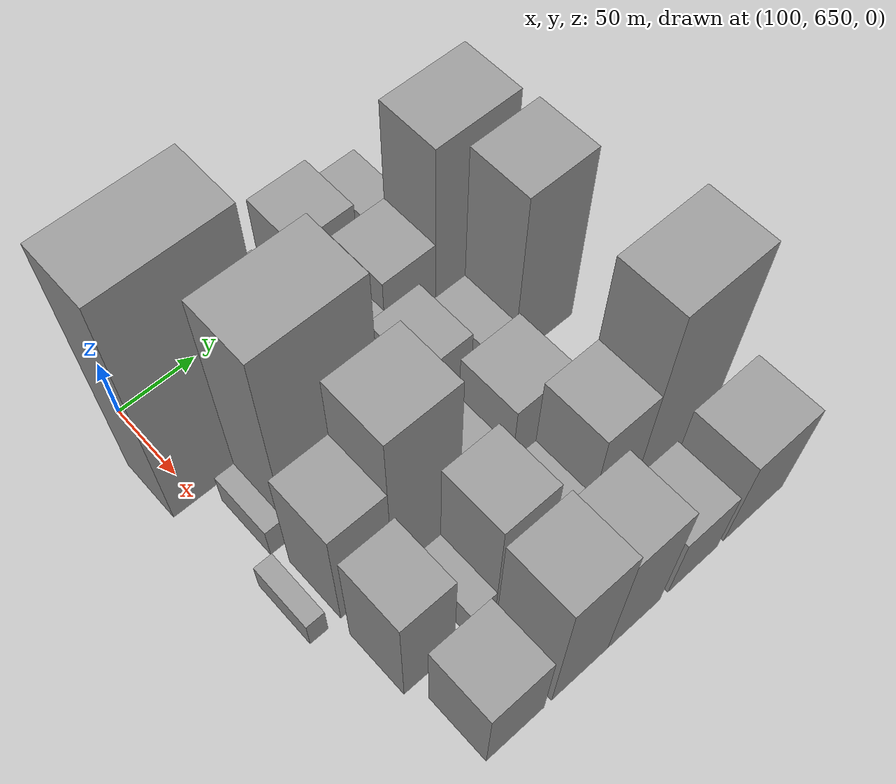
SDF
<sdf version="1.6">
 <world name="default">
  <model name="building_41">
   <static>1</static>
   <pose>100.0000 655.8321 0 0.000000 0.000000 0.000000</pose>
   <link name="link">
    <pose>0 0 9.00 0 0 0</pose>
    <collision name="collision"><geometry><box><size>40.0000 7.8159 18.0000</size></box></geometry></collision>
    <visual name="visual">
     <cast_shadows>0</cast_shadows>
     <geometry><box><size>40.0000 7.8159 18.0000</size></box></geometry>
     <material>
      <script>
       <uri>model://grey_wall/materials/scripts</uri>
       <uri>model://grey_wall/materials/textures</uri>
       <name>vrc/grey_wall</name>
      </script>
     </material>
    </visual>
   </link>
  </model>
  <model name="building_42">
   <static>1</static>
   <pose>100.0000 681.1262 0 0.000000 0.000000 0.000000</pose>
   <link name="link">
    <pose>0 0 28.50 0 0 0</pose>
    <collision name="collision"><geometry><box><size>40.0000 28.7722 57.0000</size></box></geometry></collision>
    <visual name="visual">
     <cast_shadows>0</cast_shadows>
     <geometry><box><size>40.0000 28.7722 57.0000</size></box></geometry>
     <material>
      <script>
       <uri>model://grey_wall/materials/scripts</uri>
       <uri>model://grey_wall/materials/textures</uri>
       <name>vrc/grey_wall</name>
      </script>
     </material>
    </visual>
   </link>
  </model>
  <model name="building_43">
   <static>1</static>
   <pose>100.0000 753.0866 0 0.000000 0.000000 0.000000</pose>
   <link name="link">
    <pose>0 0 12.00 0 0 0</pose>
    <collision name="collision"><geometry><box><size>40.0000 11.7162 24.0000</size></box></geometry></collision>
    <visual name="visual">
     <cast_shadows>0</cast_shadows>
     <geometry><box><size>40.0000 11.7162 24.0000</size></box></geometry>
     <material>
      <script>
       <uri>model://grey_wall/materials/scripts</uri>
       <uri>model://grey_wall/materials/textures</uri>
       <name>vrc/grey_wall</name>
      </script>
     </material>
    </visual>
   </link>
  </model>
  <model name="building_44">
   <static>1</static>
   <pose>100.0000 781.7232 0 0.000000 0.000000 0.000000</pose>
   <link name="link">
    <pose>0 0 33.00 0 0 0</pose>
    <collision name="collision"><geometry><box><size>40.0000 39.5569 66.0000</size></box></geometry></collision>
    <visual name="visual">
     <cast_shadows>0</cast_shadows>
     <geometry><box><size>40.0000 39.5569 66.0000</size></box></geometry>
     <material>
      <script>
       <uri>model://grey_wall/materials/scripts</uri>
       <uri>model://grey_wall/materials/textures</uri>
       <name>vrc/grey_wall</name>
      </script>
     </material>
    </visual>
   </link>
  </model>
  <model name="building_45">
   <static>1</static>
   <pose>100.0000 804.6538 0 0.000000 0.000000 0.000000</pose>
   <link name="link">
    <pose>0 0 7.50 0 0 0</pose>
    <collision name="collision"><geometry><box><size>40.0000 6.3044 15.0000</size></box></geometry></collision>
    <visual name="visual">
     <cast_shadows>0</cast_shadows>
     <geometry><box><size>40.0000 6.3044 15.0000</size></box></geometry>
     <material>
      <script>
       <uri>model://grey_wall/materials/scripts</uri>
       <uri>model://grey_wall/materials/textures</uri>
       <name>vrc/grey_wall</name>
      </script>
     </material>
    </visual>
   </link>
  </model>
  <model name="building_46">
   <static>1</static>
   <pose>100.0000 820.9701 0 0.000000 0.000000 0.000000</pose>
   <link name="link">
    <pose>0 0 24.00 0 0 0</pose>
    <collision name="collision"><geometry><box><size>40.0000 26.3282 48.0000</size></box></geometry></collision>
    <visual name="visual">
     <cast_shadows>0</cast_shadows>
     <geometry><box><size>40.0000 26.3282 48.0000</size></box></geometry>
     <material>
      <script>
       <uri>model://grey_wall/materials/scripts</uri>
       <uri>model://grey_wall/materials/textures</uri>
       <name>vrc/grey_wall</name>
      </script>
     </material>
    </visual>
   </link>
  </model>
  <model name="building_90">
   <static>1</static>
   <pose>149.0000 671.9954 0 0.000000 0.000000 0.000000</pose>
   <link name="link">
    <pose>0 0 99.00 0 0 0</pose>
    <collision name="collision"><geometry><box><size>40.0000 73.6332 198.0000</size></box></geometry></collision>
    <visual name="visual">
     <cast_shadows>0</cast_shadows>
     <geometry><box><size>40.0000 73.6332 198.0000</size></box></geometry>
     <material>
      <script>
       <uri>model://grey_wall/materials/scripts</uri>
       <uri>model://grey_wall/materials/textures</uri>
       <name>vrc/grey_wall</name>
      </script>
     </material>
    </visual>
   </link>
  </model>
  <model name="building_91">
   <static>1</static>
   <pose>149.0000 717.7191 0 0.000000 0.000000 0.000000</pose>
   <link name="link">
    <pose>0 0 16.50 0 0 0</pose>
    <collision name="collision"><geometry><box><size>40.0000 17.8144 33.0000</size></box></geometry></collision>
    <visual name="visual">
     <cast_shadows>0</cast_shadows>
     <geometry><box><size>40.0000 17.8144 33.0000</size></box></geometry>
     <material>
      <script>
       <uri>model://grey_wall/materials/scripts</uri>
       <uri>model://grey_wall/materials/textures</uri>
       <name>vrc/grey_wall</name>
      </script>
     </material>
    </visual>
   </link>
  </model>
  <model name="building_92">
   <static>1</static>
   <pose>149.0000 740.4591 0 0.000000 0.000000 0.000000</pose>
   <link name="link">
    <pose>0 0 24.00 0 0 0</pose>
    <collision name="collision"><geometry><box><size>40.0000 27.6656 48.0000</size></box></geometry></collision>
    <visual name="visual">
     <cast_shadows>0</cast_shadows>
     <geometry><box><size>40.0000 27.6656 48.0000</size></box></geometry>
     <material>
      <script>
       <uri>model://grey_wall/materials/scripts</uri>
       <uri>model://grey_wall/materials/textures</uri>
       <name>vrc/grey_wall</name>
      </script>
     </material>
    </visual>
   </link>
  </model>
  <model name="building_93">
   <static>1</static>
   <pose>149.0000 766.5676 0 0.000000 0.000000 0.000000</pose>
   <link name="link">
    <pose>0 0 22.50 0 0 0</pose>
    <collision name="collision"><geometry><box><size>40.0000 24.5512 45.0000</size></box></geometry></collision>
    <visual name="visual">
     <cast_shadows>0</cast_shadows>
     <geometry><box><size>40.0000 24.5512 45.0000</size></box></geometry>
     <material>
      <script>
       <uri>model://grey_wall/materials/scripts</uri>
       <uri>model://grey_wall/materials/textures</uri>
       <name>vrc/grey_wall</name>
      </script>
     </material>
    </visual>
   </link>
  </model>
  <model name="building_94">
   <static>1</static>
   <pose>149.0000 796.7717 0 0.000000 0.000000 0.000000</pose>
   <link name="link">
    <pose>0 0 34.50 0 0 0</pose>
    <collision name="collision"><geometry><box><size>40.0000 35.8570 69.0000</size></box></geometry></collision>
    <visual name="visual">
     <cast_shadows>0</cast_shadows>
     <geometry><box><size>40.0000 35.8570 69.0000</size></box></geometry>
     <material>
      <script>
       <uri>model://grey_wall/materials/scripts</uri>
       <uri>model://grey_wall/materials/textures</uri>
       <name>vrc/grey_wall</name>
      </script>
     </material>
    </visual>
   </link>
  </model>
  <model name="building_95">
   <static>1</static>
   <pose>149.0000 842.2011 0 0.000000 0.000000 0.000000</pose>
   <link name="link">
    <pose>0 0 72.00 0 0 0</pose>
    <collision name="collision"><geometry><box><size>40.0000 55.0018 144.0000</size></box></geometry></collision>
    <visual name="visual">
     <cast_shadows>0</cast_shadows>
     <geometry><box><size>40.0000 55.0018 144.0000</size></box></geometry>
     <material>
      <script>
       <uri>model://grey_wall/materials/scripts</uri>
       <uri>model://grey_wall/materials/textures</uri>
       <name>vrc/grey_wall</name>
      </script>
     </material>
    </visual>
   </link>
  </model>
  <model name="building_138">
   <static>1</static>
   <pose>198.0000 665.2868 0 0.000000 0.000000 0.000000</pose>
   <link name="link">
    <pose>0 0 13.50 0 0 0</pose>
    <collision name="collision"><geometry><box><size>40.0000 11.9580 27.0000</size></box></geometry></collision>
    <visual name="visual">
     <cast_shadows>0</cast_shadows>
     <geometry><box><size>40.0000 11.9580 27.0000</size></box></geometry>
     <material>
      <script>
       <uri>model://grey_wall/materials/scripts</uri>
       <uri>model://grey_wall/materials/textures</uri>
       <name>vrc/grey_wall</name>
      </script>
     </material>
    </visual>
   </link>
  </model>
  <model name="building_139">
   <static>1</static>
   <pose>198.0000 703.0408 0 0.000000 0.000000 0.000000</pose>
   <link name="link">
    <pose>0 0 88.50 0 0 0</pose>
    <collision name="collision"><geometry><box><size>40.0000 63.5500 177.0000</size></box></geometry></collision>
    <visual name="visual">
     <cast_shadows>0</cast_shadows>
     <geometry><box><size>40.0000 63.5500 177.0000</size></box></geometry>
     <material>
      <script>
       <uri>model://grey_wall/materials/scripts</uri>
       <uri>model://grey_wall/materials/textures</uri>
       <name>vrc/grey_wall</name>
      </script>
     </material>
    </visual>
   </link>
  </model>
  <model name="building_140">
   <static>1</static>
   <pose>198.0000 743.2439 0 0.000000 0.000000 0.000000</pose>
   <link name="link">
    <pose>0 0 15.00 0 0 0</pose>
    <collision name="collision"><geometry><box><size>40.0000 16.8561 30.0000</size></box></geometry></collision>
    <visual name="visual">
     <cast_shadows>0</cast_shadows>
     <geometry><box><size>40.0000 16.8561 30.0000</size></box></geometry>
     <material>
      <script>
       <uri>model://grey_wall/materials/scripts</uri>
       <uri>model://grey_wall/materials/textures</uri>
       <name>vrc/grey_wall</name>
      </script>
     </material>
    </visual>
   </link>
  </model>
  <model name="building_141">
   <static>1</static>
   <pose>198.0000 778.1643 0 0.000000 0.000000 0.000000</pose>
   <link name="link">
    <pose>0 0 31.50 0 0 0</pose>
    <collision name="collision"><geometry><box><size>40.0000 34.9846 63.0000</size></box></geometry></collision>
    <visual name="visual">
     <cast_shadows>0</cast_shadows>
     <geometry><box><size>40.0000 34.9846 63.0000</size></box></geometry>
     <material>
      <script>
       <uri>model://grey_wall/materials/scripts</uri>
       <uri>model://grey_wall/materials/textures</uri>
       <name>vrc/grey_wall</name>
      </script>
     </material>
    </visual>
   </link>
  </model>
  <model name="building_142">
   <static>1</static>
   <pose>198.0000 816.1529 0 0.000000 0.000000 0.000000</pose>
   <link name="link">
    <pose>0 0 19.50 0 0 0</pose>
    <collision name="collision"><geometry><box><size>40.0000 22.9926 39.0000</size></box></geometry></collision>
    <visual name="visual">
     <cast_shadows>0</cast_shadows>
     <geometry><box><size>40.0000 22.9926 39.0000</size></box></geometry>
     <material>
      <script>
       <uri>model://grey_wall/materials/scripts</uri>
       <uri>model://grey_wall/materials/textures</uri>
       <name>vrc/grey_wall</name>
      </script>
     </material>
    </visual>
   </link>
  </model>
  <model name="building_143">
   <static>1</static>
   <pose>198.0000 849.9334 0 0.000000 0.000000 0.000000</pose>
   <link name="link">
    <pose>0 0 72.00 0 0 0</pose>
    <collision name="collision"><geometry><box><size>40.0000 44.5684 144.0000</size></box></geometry></collision>
    <visual name="visual">
     <cast_shadows>0</cast_shadows>
     <geometry><box><size>40.0000 44.5684 144.0000</size></box></geometry>
     <material>
      <script>
       <uri>model://grey_wall/materials/scripts</uri>
       <uri>model://grey_wall/materials/textures</uri>
       <name>vrc/grey_wall</name>
      </script>
     </material>
    </visual>
   </link>
  </model>
  <model name="building_189">
   <static>1</static>
   <pose>247.0000 650.4575 0 0.000000 0.000000 0.000000</pose>
   <link name="link">
    <pose>0 0 12.00 0 0 0</pose>
    <collision name="collision"><geometry><box><size>40.0000 11.3680 24.0000</size></box></geometry></collision>
    <visual name="visual">
     <cast_shadows>0</cast_shadows>
     <geometry><box><size>40.0000 11.3680 24.0000</size></box></geometry>
     <material>
      <script>
       <uri>model://grey_wall/materials/scripts</uri>
       <uri>model://grey_wall/materials/textures</uri>
       <name>vrc/grey_wall</name>
      </script>
     </material>
    </visual>
   </link>
  </model>
  <model name="building_190">
   <static>1</static>
   <pose>247.0000 681.1887 0 0.000000 0.000000 0.000000</pose>
   <link name="link">
    <pose>0 0 48.00 0 0 0</pose>
    <collision name="collision"><geometry><box><size>40.0000 34.0944 96.0000</size></box></geometry></collision>
    <visual name="visual">
     <cast_shadows>0</cast_shadows>
     <geometry><box><size>40.0000 34.0944 96.0000</size></box></geometry>
     <material>
      <script>
       <uri>model://grey_wall/materials/scripts</uri>
       <uri>model://grey_wall/materials/textures</uri>
       <name>vrc/grey_wall</name>
      </script>
     </material>
    </visual>
   </link>
  </model>
  <model name="building_191">
   <static>1</static>
   <pose>247.0000 720.3317 0 0.000000 0.000000 0.000000</pose>
   <link name="link">
    <pose>0 0 72.00 0 0 0</pose>
    <collision name="collision"><geometry><box><size>40.0000 44.1915 144.0000</size></box></geometry></collision>
    <visual name="visual">
     <cast_shadows>0</cast_shadows>
     <geometry><box><size>40.0000 44.1915 144.0000</size></box></geometry>
     <material>
      <script>
       <uri>model://grey_wall/materials/scripts</uri>
       <uri>model://grey_wall/materials/textures</uri>
       <name>vrc/grey_wall</name>
      </script>
     </material>
    </visual>
   </link>
  </model>
  <model name="building_192">
   <static>1</static>
   <pose>247.0000 756.8738 0 0.000000 0.000000 0.000000</pose>
   <link name="link">
    <pose>0 0 25.50 0 0 0</pose>
    <collision name="collision"><geometry><box><size>40.0000 28.8927 51.0000</size></box></geometry></collision>
    <visual name="visual">
     <cast_shadows>0</cast_shadows>
     <geometry><box><size>40.0000 28.8927 51.0000</size></box></geometry>
     <material>
      <script>
       <uri>model://grey_wall/materials/scripts</uri>
       <uri>model://grey_wall/materials/textures</uri>
       <name>vrc/grey_wall</name>
      </script>
     </material>
    </visual>
   </link>
  </model>
  <model name="building_193">
   <static>1</static>
   <pose>247.0000 775.0537 0 0.000000 0.000000 0.000000</pose>
   <link name="link">
    <pose>0 0 9.00 0 0 0</pose>
    <collision name="collision"><geometry><box><size>40.0000 7.4670 18.0000</size></box></geometry></collision>
    <visual name="visual">
     <cast_shadows>0</cast_shadows>
     <geometry><box><size>40.0000 7.4670 18.0000</size></box></geometry>
     <material>
      <script>
       <uri>model://grey_wall/materials/scripts</uri>
       <uri>model://grey_wall/materials/textures</uri>
       <name>vrc/grey_wall</name>
      </script>
     </material>
    </visual>
   </link>
  </model>
  <model name="building_194">
   <static>1</static>
   <pose>247.0000 798.5951 0 0.000000 0.000000 0.000000</pose>
   <link name="link">
    <pose>0 0 34.50 0 0 0</pose>
    <collision name="collision"><geometry><box><size>40.0000 39.6158 69.0000</size></box></geometry></collision>
    <visual name="visual">
     <cast_shadows>0</cast_shadows>
     <geometry><box><size>40.0000 39.6158 69.0000</size></box></geometry>
     <material>
      <script>
       <uri>model://grey_wall/materials/scripts</uri>
       <uri>model://grey_wall/materials/textures</uri>
       <name>vrc/grey_wall</name>
      </script>
     </material>
    </visual>
   </link>
  </model>
  <model name="building_195">
   <static>1</static>
   <pose>247.0000 825.0973 0 0.000000 0.000000 0.000000</pose>
   <link name="link">
    <pose>0 0 13.50 0 0 0</pose>
    <collision name="collision"><geometry><box><size>40.0000 13.3885 27.0000</size></box></geometry></collision>
    <visual name="visual">
     <cast_shadows>0</cast_shadows>
     <geometry><box><size>40.0000 13.3885 27.0000</size></box></geometry>
     <material>
      <script>
       <uri>model://grey_wall/materials/scripts</uri>
       <uri>model://grey_wall/materials/textures</uri>
       <name>vrc/grey_wall</name>
      </script>
     </material>
    </visual>
   </link>
  </model>
  <model name="building_234">
   <static>1</static>
   <pose>296.0000 678.5001 0 0.000000 0.000000 0.000000</pose>
   <link name="link">
    <pose>0 0 46.50 0 0 0</pose>
    <collision name="collision"><geometry><box><size>40.0000 32.3905 93.0000</size></box></geometry></collision>
    <visual name="visual">
     <cast_shadows>0</cast_shadows>
     <geometry><box><size>40.0000 32.3905 93.0000</size></box></geometry>
     <material>
      <script>
       <uri>model://grey_wall/materials/scripts</uri>
       <uri>model://grey_wall/materials/textures</uri>
       <name>vrc/grey_wall</name>
      </script>
     </material>
    </visual>
   </link>
  </model>
  <model name="building_235">
   <static>1</static>
   <pose>296.0000 713.2210 0 0.000000 0.000000 0.000000</pose>
   <link name="link">
    <pose>0 0 15.00 0 0 0</pose>
    <collision name="collision"><geometry><box><size>40.0000 17.0513 30.0000</size></box></geometry></collision>
    <visual name="visual">
     <cast_shadows>0</cast_shadows>
     <geometry><box><size>40.0000 17.0513 30.0000</size></box></geometry>
     <material>
      <script>
       <uri>model://grey_wall/materials/scripts</uri>
       <uri>model://grey_wall/materials/textures</uri>
       <name>vrc/grey_wall</name>
      </script>
     </material>
    </visual>
   </link>
  </model>
  <model name="building_236">
   <static>1</static>
   <pose>296.0000 738.9881 0 0.000000 0.000000 0.000000</pose>
   <link name="link">
    <pose>0 0 51.00 0 0 0</pose>
    <collision name="collision"><geometry><box><size>40.0000 34.4827 102.0000</size></box></geometry></collision>
    <visual name="visual">
     <cast_shadows>0</cast_shadows>
     <geometry><box><size>40.0000 34.4827 102.0000</size></box></geometry>
     <material>
      <script>
       <uri>model://grey_wall/materials/scripts</uri>
       <uri>model://grey_wall/materials/textures</uri>
       <name>vrc/grey_wall</name>
      </script>
     </material>
    </visual>
   </link>
  </model>
  <model name="building_237">
   <static>1</static>
   <pose>296.0000 769.9969 0 0.000000 0.000000 0.000000</pose>
   <link name="link">
    <pose>0 0 24.00 0 0 0</pose>
    <collision name="collision"><geometry><box><size>40.0000 27.5350 48.0000</size></box></geometry></collision>
    <visual name="visual">
     <cast_shadows>0</cast_shadows>
     <geometry><box><size>40.0000 27.5350 48.0000</size></box></geometry>
     <material>
      <script>
       <uri>model://grey_wall/materials/scripts</uri>
       <uri>model://grey_wall/materials/textures</uri>
       <name>vrc/grey_wall</name>
      </script>
     </material>
    </visual>
   </link>
  </model>
  <model name="building_238">
   <static>1</static>
   <pose>296.0000 800.9115 0 0.000000 0.000000 0.000000</pose>
   <link name="link">
    <pose>0 0 52.50 0 0 0</pose>
    <collision name="collision"><geometry><box><size>40.0000 34.2942 105.0000</size></box></geometry></collision>
    <visual name="visual">
     <cast_shadows>0</cast_shadows>
     <geometry><box><size>40.0000 34.2942 105.0000</size></box></geometry>
     <material>
      <script>
       <uri>model://grey_wall/materials/scripts</uri>
       <uri>model://grey_wall/materials/textures</uri>
       <name>vrc/grey_wall</name>
      </script>
     </material>
    </visual>
   </link>
  </model>
  <model name="building_239">
   <static>1</static>
   <pose>296.0000 845.8010 0 0.000000 0.000000 0.000000</pose>
   <link name="link">
    <pose>0 0 85.50 0 0 0</pose>
    <collision name="collision"><geometry><box><size>40.0000 55.4848 171.0000</size></box></geometry></collision>
    <visual name="visual">
     <cast_shadows>0</cast_shadows>
     <geometry><box><size>40.0000 55.4848 171.0000</size></box></geometry>
     <material>
      <script>
       <uri>model://grey_wall/materials/scripts</uri>
       <uri>model://grey_wall/materials/textures</uri>
       <name>vrc/grey_wall</name>
      </script>
     </material>
    </visual>
   </link>
  </model>
  <model name="building_281">
   <static>1</static>
   <pose>345.0000 688.6957 0 0.000000 0.000000 0.000000</pose>
   <link name="link">
    <pose>0 0 34.50 0 0 0</pose>
    <collision name="collision"><geometry><box><size>40.0000 37.4769 69.0000</size></box></geometry></collision>
    <visual name="visual">
     <cast_shadows>0</cast_shadows>
     <geometry><box><size>40.0000 37.4769 69.0000</size></box></geometry>
     <material>
      <script>
       <uri>model://grey_wall/materials/scripts</uri>
       <uri>model://grey_wall/materials/textures</uri>
       <name>vrc/grey_wall</name>
      </script>
     </material>
    </visual>
   </link>
  </model>
  <model name="building_282">
   <static>1</static>
   <pose>345.0000 731.4537 0 0.000000 0.000000 0.000000</pose>
   <link name="link">
    <pose>0 0 60.00 0 0 0</pose>
    <collision name="collision"><geometry><box><size>40.0000 38.0391 120.0000</size></box></geometry></collision>
    <visual name="visual">
     <cast_shadows>0</cast_shadows>
     <geometry><box><size>40.0000 38.0391 120.0000</size></box></geometry>
     <material>
      <script>
       <uri>model://grey_wall/materials/scripts</uri>
       <uri>model://grey_wall/materials/textures</uri>
       <name>vrc/grey_wall</name>
      </script>
     </material>
    </visual>
   </link>
  </model>
  <model name="building_283">
   <static>1</static>
   <pose>345.0000 768.7024 0 0.000000 0.000000 0.000000</pose>
   <link name="link">
    <pose>0 0 54.00 0 0 0</pose>
    <collision name="collision"><geometry><box><size>40.0000 36.4583 108.0000</size></box></geometry></collision>
    <visual name="visual">
     <cast_shadows>0</cast_shadows>
     <geometry><box><size>40.0000 36.4583 108.0000</size></box></geometry>
     <material>
      <script>
       <uri>model://grey_wall/materials/scripts</uri>
       <uri>model://grey_wall/materials/textures</uri>
       <name>vrc/grey_wall</name>
      </script>
     </material>
    </visual>
   </link>
  </model>
  <model name="building_284">
   <static>1</static>
   <pose>345.0000 810.9256 0 0.000000 0.000000 0.000000</pose>
   <link name="link">
    <pose>0 0 30.00 0 0 0</pose>
    <collision name="collision"><geometry><box><size>40.0000 35.9881 60.0000</size></box></geometry></collision>
    <visual name="visual">
     <cast_shadows>0</cast_shadows>
     <geometry><box><size>40.0000 35.9881 60.0000</size></box></geometry>
     <material>
      <script>
       <uri>model://grey_wall/materials/scripts</uri>
       <uri>model://grey_wall/materials/textures</uri>
       <name>vrc/grey_wall</name>
      </script>
     </material>
    </visual>
   </link>
  </model>
  <model name="building_285">
   <static>1</static>
   <pose>345.0000 856.3871 0 0.000000 0.000000 0.000000</pose>
   <link name="link">
    <pose>0 0 42.00 0 0 0</pose>
    <collision name="collision"><geometry><box><size>40.0000 44.9350 84.0000</size></box></geometry></collision>
    <visual name="visual">
     <cast_shadows>0</cast_shadows>
     <geometry><box><size>40.0000 44.9350 84.0000</size></box></geometry>
     <material>
      <script>
       <uri>model://grey_wall/materials/scripts</uri>
       <uri>model://grey_wall/materials/textures</uri>
       <name>vrc/grey_wall</name>
      </script>
     </material>
    </visual>
   </link>
  </model>
 </world>
</sdf>
